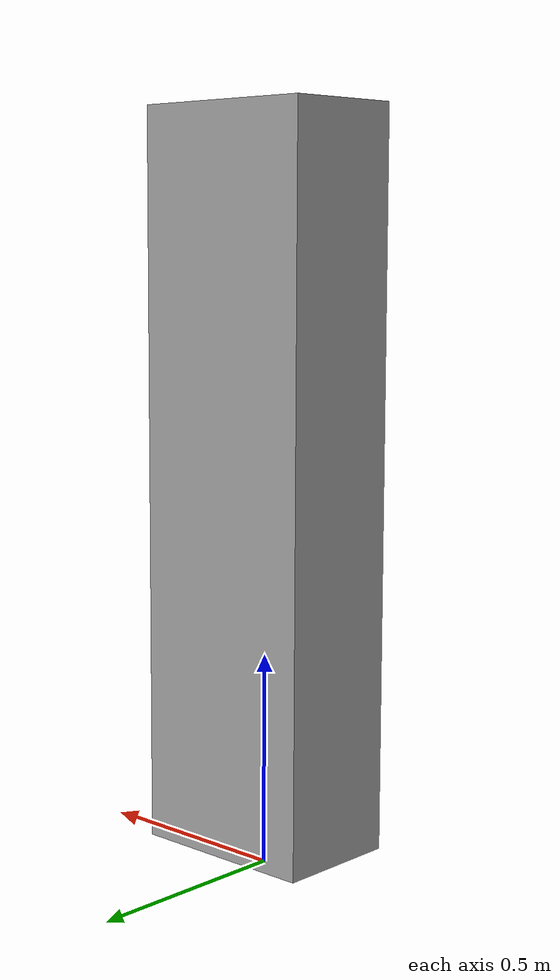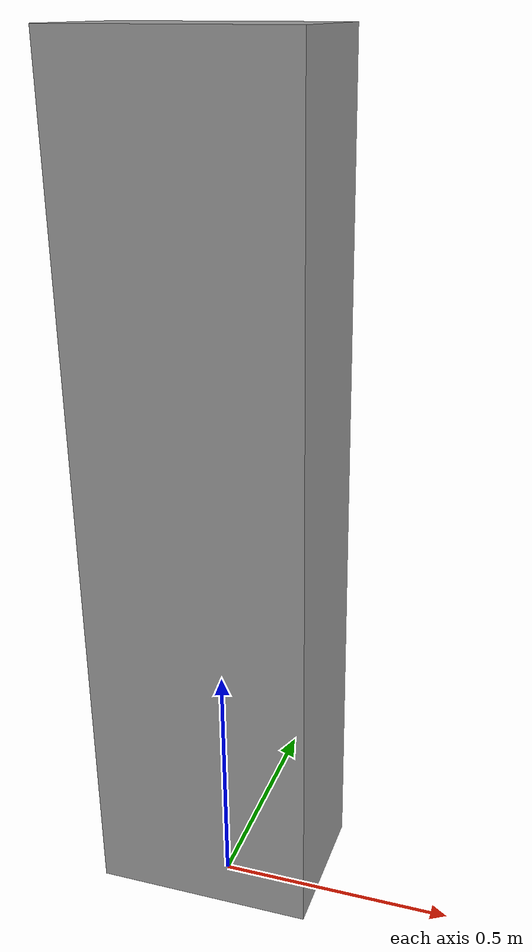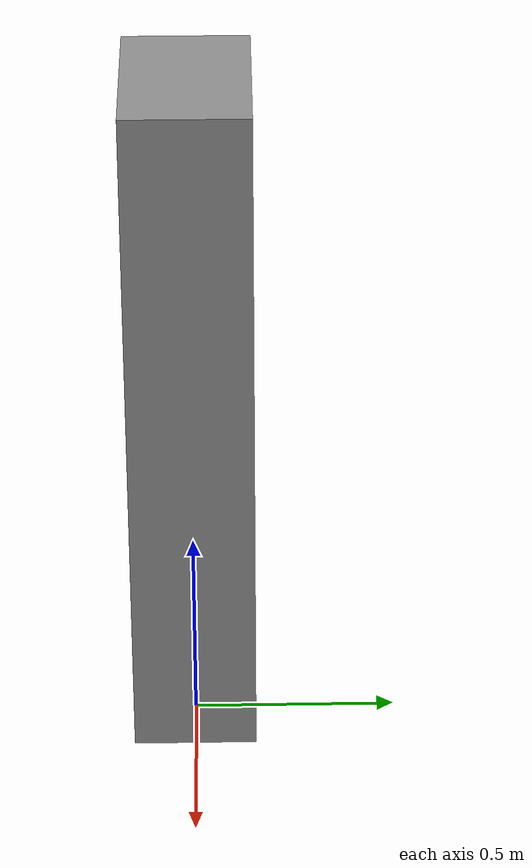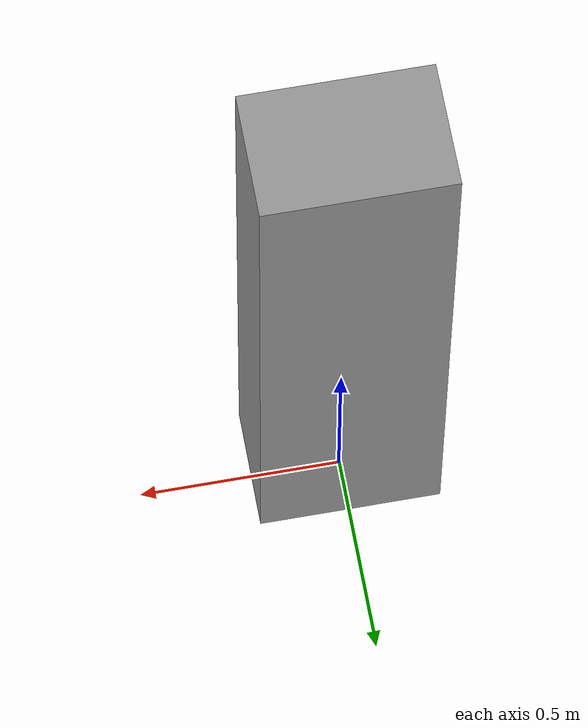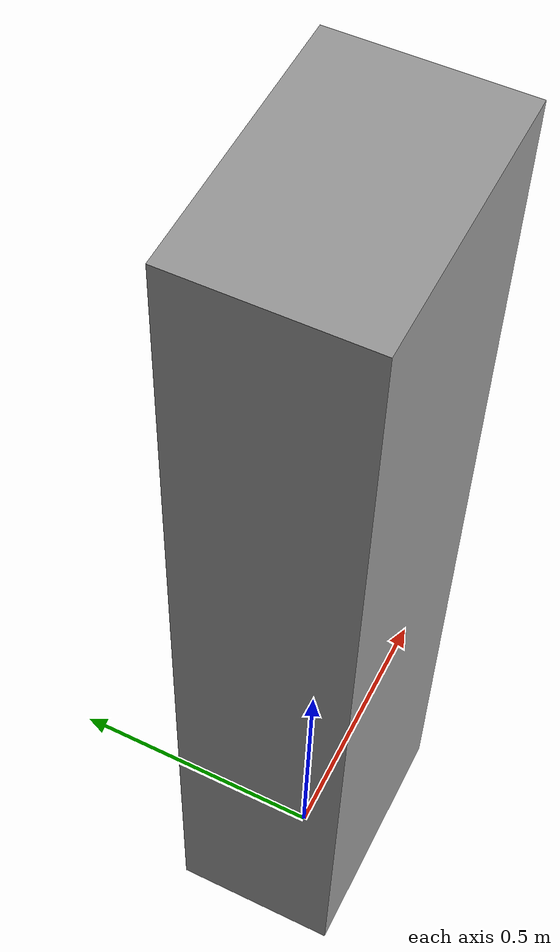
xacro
<?xml version="1.0"?>
<robot name="g1_fake" xmlns:xacro="http://www.ros.org/wiki/xacro">

  <!-- Base link (simple box) -->
  <link name="base_link">
    <inertial>
      <origin xyz="0 0 0.9" rpy="0 0 0"/>
      <mass value="60.0"/>
      <inertia ixx="2.0" ixy="0" ixz="0" iyy="2.0" iyz="0" izz="2.0"/>
    </inertial>

    <collision>
      <origin xyz="0 0 0.9" rpy="0 0 0"/>
      <geometry>
        <box size="0.45 0.30 1.70"/>
      </geometry>
    </collision>

    <visual>
      <origin xyz="0 0 0.9" rpy="0 0 0"/>
      <geometry>
        <box size="0.45 0.30 1.70"/>
      </geometry>
      <material name="gray">
        <color rgba="0.6 0.6 0.6 1.0"/>
      </material>
    </visual>
  </link>

  <!-- Gazebo plugin: /cmd_vel -> /odom + TF -->
  <gazebo>
    <plugin name="g1_planar_move" filename="libgazebo_ros_planar_move.so">
      <ros>
        <namespace>/</namespace>
      </ros>

      <commandTopic>cmd_vel</commandTopic>
      <odometryTopic>odom</odometryTopic>

      <odometryFrame>odom</odometryFrame>
      <robotBaseFrame>base_link</robotBaseFrame>

      <publishTf>true</publishTf>

      <maxVelX>1.0</maxVelX>
      <maxVelY>0.0</maxVelY>
      <maxVelYaw>1.5</maxVelYaw>
    </plugin>
  </gazebo>

</robot>
